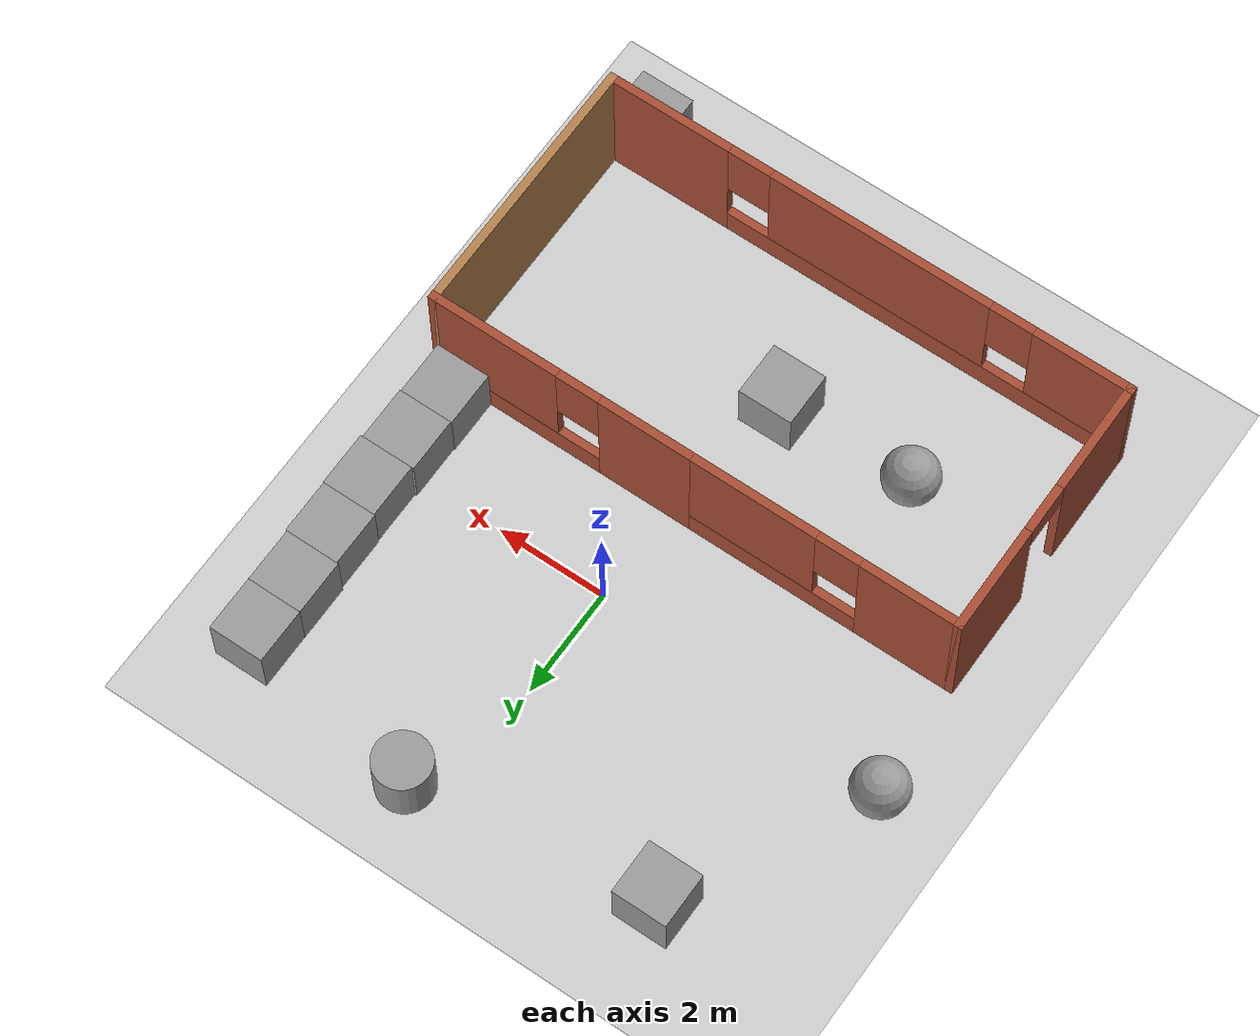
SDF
<sdf version="1.7">
 <world name="default">
  <light name="sun" type="directional">
   <pose>0 0 10 0 -0 0</pose>
   <diffuse>0.8 0.8 0.8 1</diffuse>
   <specular>0.2 0.2 0.2 1</specular>
   <attenuation>
    <range>1000</range>
    <constant>0.9</constant>
    <linear>0.01</linear>
    <quadratic>0.001</quadratic>
   </attenuation>
   <direction>-0.5 0.1 -0.9</direction>
   <spot><inner_angle>0</inner_angle><outer_angle>0</outer_angle><falloff>0</falloff></spot>
  </light>
  <model name="ground_plane">
   <static>1</static>
   <link name="link">
    <collision name="collision">
     <geometry><plane><normal>0 0 1</normal><size>100 100</size></plane></geometry>
     <surface>
      <contact><collide_bitmask>65535</collide_bitmask></contact>
      <friction><ode><mu>100</mu><mu2>50</mu2></ode></friction>
     </surface>
    </collision>
    <visual name="visual">
     <cast_shadows>0</cast_shadows>
     <geometry><plane><normal>0 0 1</normal><size>100 100</size></plane></geometry>
     <material>
      <script><uri>file://media/materials/scripts/gazebo.material</uri><name>Gazebo/Grey</name></script>
     </material>
    </visual>
   </link>
  </model>
  <gravity>0 0 -9.8</gravity>
  <magnetic_field>6e-06 2.3e-05 -4.2e-05</magnetic_field>
  <atmosphere type="adiabatic"/>
  <physics type="ode">
   <max_step_size>0.001</max_step_size>
   <real_time_factor>1</real_time_factor>
   <real_time_update_rate>1000</real_time_update_rate>
  </physics>
  <scene><ambient>0.4 0.4 0.4 1</ambient><background>0.7 0.7 0.7 1</background><shadows>1</shadows></scene>
  <spherical_coordinates>
   <surface_model>EARTH_WGS84</surface_model>
   <latitude_deg>0</latitude_deg>
   <longitude_deg>0</longitude_deg>
   <elevation>0</elevation>
   <heading_deg>0</heading_deg>
  </spherical_coordinates>
  <model name="frist_world">
   <pose>-0.445 -3.3625 0 0 -0 0</pose>
   <link name="Wall_0">
    <pose>2.5 1.5625 0 0 -0 0</pose>
    <visual name="Wall_0_Visual_0">
     <pose>-1.6313 0 1.25 0 -0 0</pose>
     <geometry><box><size>1.7374 0.15 2.5</size></box></geometry>
     <material>
      <script><uri>file://media/materials/scripts/gazebo.material</uri><name>Gazebo/Bricks</name></script>
      <ambient>1 1 1 1</ambient>
     </material>
     <meta><layer>0</layer></meta>
    </visual>
    <collision name="Wall_0_Collision_0">
     <geometry><box><size>1.7374 0.15 2.5</size></box></geometry>
     <pose>-1.6313 0 1.25 0 -0 0</pose>
    </collision>
    <visual name="Wall_0_Visual_1">
     <pose>0.868699 0 0.25 0 -0 0</pose>
     <geometry><box><size>3.2626 0.15 0.5</size></box></geometry>
     <material>
      <script><uri>file://media/materials/scripts/gazebo.material</uri><name>Gazebo/Bricks</name></script>
      <ambient>1 1 1 1</ambient>
     </material>
     <meta><layer>0</layer></meta>
    </visual>
    <collision name="Wall_0_Collision_1">
     <geometry><box><size>3.2626 0.15 0.5</size></box></geometry>
     <pose>0.868699 0 0.25 0 -0 0</pose>
    </collision>
    <visual name="Wall_0_Visual_2">
     <pose>1.2687 0 1.5 0 -0 0</pose>
     <geometry><box><size>2.4626 0.15 2</size></box></geometry>
     <material>
      <script><uri>file://media/materials/scripts/gazebo.material</uri><name>Gazebo/Bricks</name></script>
      <ambient>1 1 1 1</ambient>
     </material>
     <meta><layer>0</layer></meta>
    </visual>
    <collision name="Wall_0_Collision_2">
     <geometry><box><size>2.4626 0.15 2</size></box></geometry>
     <pose>1.2687 0 1.5 0 -0 0</pose>
    </collision>
    <visual name="Wall_0_Visual_3">
     <pose>-0.362601 0 1.9 0 -0 0</pose>
     <geometry><box><size>0.8 0.15 1.2</size></box></geometry>
     <material>
      <script><uri>file://media/materials/scripts/gazebo.material</uri><name>Gazebo/Bricks</name></script>
      <ambient>1 1 1 1</ambient>
     </material>
     <meta><layer>0</layer></meta>
    </visual>
    <collision name="Wall_0_Collision_3">
     <geometry><box><size>0.8 0.15 1.2</size></box></geometry>
     <pose>-0.362601 0 1.9 0 -0 0</pose>
    </collision>
   </link>
   <link name="Wall_3">
    <collision name="Wall_3_Collision">
     <geometry><box><size>5 0.15 2.5</size></box></geometry>
     <pose>0 0 1.25 0 -0 0</pose>
    </collision>
    <visual name="Wall_3_Visual">
     <pose>0 0 1.25 0 -0 0</pose>
     <geometry><box><size>5 0.15 2.5</size></box></geometry>
     <material>
      <script><uri>file://media/materials/scripts/gazebo.material</uri><name>Gazebo/Wood</name></script>
      <ambient>1 1 1 1</ambient>
     </material>
     <meta><layer>0</layer></meta>
    </visual>
    <pose>4.925 -0.8625 0 0 -0 -1.5708</pose>
   </link>
   <link name="Wall_4">
    <pose>-0 -3.2875 0 0 -0 3.14159</pose>
    <visual name="Wall_4_Visual_0">
     <pose>-3.80224 0 1.25 0 -0 0</pose>
     <geometry><box><size>2.39552 0.15 2.5</size></box></geometry>
     <material>
      <script><uri>file://media/materials/scripts/gazebo.material</uri><name>Gazebo/Bricks</name></script>
      <ambient>1 1 1 1</ambient>
     </material>
     <meta><layer>0</layer></meta>
    </visual>
    <collision name="Wall_4_Collision_0">
     <geometry><box><size>2.39552 0.15 2.5</size></box></geometry>
     <pose>-3.80224 0 1.25 0 -0 0</pose>
    </collision>
    <visual name="Wall_4_Visual_1">
     <pose>1.19776 0 0.25 0 -0 0</pose>
     <geometry><box><size>7.60448 0.15 0.5</size></box></geometry>
     <material>
      <script><uri>file://media/materials/scripts/gazebo.material</uri><name>Gazebo/Bricks</name></script>
      <ambient>1 1 1 1</ambient>
     </material>
     <meta><layer>0</layer></meta>
    </visual>
    <collision name="Wall_4_Collision_1">
     <geometry><box><size>7.60448 0.15 0.5</size></box></geometry>
     <pose>1.19776 0 0.25 0 -0 0</pose>
    </collision>
    <visual name="Wall_4_Visual_2">
     <pose>0.272918 0 1.5 0 -0 0</pose>
     <geometry><box><size>4.1548 0.15 2</size></box></geometry>
     <material>
      <script><uri>file://media/materials/scripts/gazebo.material</uri><name>Gazebo/Bricks</name></script>
      <ambient>1 1 1 1</ambient>
     </material>
     <meta><layer>0</layer></meta>
    </visual>
    <collision name="Wall_4_Collision_2">
     <geometry><box><size>4.1548 0.15 2</size></box></geometry>
     <pose>0.272918 0 1.5 0 -0 0</pose>
    </collision>
    <visual name="Wall_4_Visual_3">
     <pose>4.07516 0 1.5 0 -0 0</pose>
     <geometry><box><size>1.84968 0.15 2</size></box></geometry>
     <material>
      <script><uri>file://media/materials/scripts/gazebo.material</uri><name>Gazebo/Bricks</name></script>
      <ambient>1 1 1 1</ambient>
     </material>
     <meta><layer>0</layer></meta>
    </visual>
    <collision name="Wall_4_Collision_3">
     <geometry><box><size>1.84968 0.15 2</size></box></geometry>
     <pose>4.07516 0 1.5 0 -0 0</pose>
    </collision>
    <visual name="Wall_4_Visual_4">
     <pose>-2.20448 0 1.9 0 -0 0</pose>
     <geometry><box><size>0.8 0.15 1.2</size></box></geometry>
     <material>
      <script><uri>file://media/materials/scripts/gazebo.material</uri><name>Gazebo/Bricks</name></script>
      <ambient>1 1 1 1</ambient>
     </material>
     <meta><layer>0</layer></meta>
    </visual>
    <collision name="Wall_4_Collision_4">
     <geometry><box><size>0.8 0.15 1.2</size></box></geometry>
     <pose>-2.20448 0 1.9 0 -0 0</pose>
    </collision>
    <visual name="Wall_4_Visual_5">
     <pose>2.75032 0 1.9 0 -0 0</pose>
     <geometry><box><size>0.8 0.15 1.2</size></box></geometry>
     <material>
      <script><uri>file://media/materials/scripts/gazebo.material</uri><name>Gazebo/Bricks</name></script>
      <ambient>1 1 1 1</ambient>
     </material>
     <meta><layer>0</layer></meta>
    </visual>
    <collision name="Wall_4_Collision_5">
     <geometry><box><size>0.8 0.15 1.2</size></box></geometry>
     <pose>2.75032 0 1.9 0 -0 0</pose>
    </collision>
   </link>
   <link name="Wall_5">
    <pose>-4.925 -0.8625 0 0 -0 1.5708</pose>
    <visual name="Wall_5_Visual_0">
     <pose>-1.44013 0 1.25 0 -0 0</pose>
     <geometry><box><size>2.11974 0.15 2.5</size></box></geometry>
     <material>
      <script><uri>file://media/materials/scripts/gazebo.material</uri><name>Gazebo/Bricks</name></script>
      <ambient>1 1 1 1</ambient>
     </material>
     <meta><layer>0</layer></meta>
    </visual>
    <collision name="Wall_5_Collision_0">
     <geometry><box><size>2.11974 0.15 2.5</size></box></geometry>
     <pose>-1.44013 0 1.25 0 -0 0</pose>
    </collision>
    <visual name="Wall_5_Visual_1">
     <pose>1.50987 0 1.25 0 -0 0</pose>
     <geometry><box><size>1.98026 0.15 2.5</size></box></geometry>
     <material>
      <script><uri>file://media/materials/scripts/gazebo.material</uri><name>Gazebo/Bricks</name></script>
      <ambient>1 1 1 1</ambient>
     </material>
     <meta><layer>0</layer></meta>
    </visual>
    <collision name="Wall_5_Collision_1">
     <geometry><box><size>1.98026 0.15 2.5</size></box></geometry>
     <pose>1.50987 0 1.25 0 -0 0</pose>
    </collision>
    <visual name="Wall_5_Visual_2">
     <pose>0.069744 0 2.25 0 -0 0</pose>
     <geometry><box><size>0.9 0.15 0.5</size></box></geometry>
     <material>
      <script><uri>file://media/materials/scripts/gazebo.material</uri><name>Gazebo/Bricks</name></script>
      <ambient>1 1 1 1</ambient>
     </material>
     <meta><layer>0</layer></meta>
    </visual>
    <collision name="Wall_5_Collision_2">
     <geometry><box><size>0.9 0.15 0.5</size></box></geometry>
     <pose>0.069744 0 2.25 0 -0 0</pose>
    </collision>
   </link>
   <link name="Wall_6">
    <pose>-2.425 1.5625 0 0 -0 0</pose>
    <visual name="Wall_6_Visual_0">
     <pose>-1.64236 0 1.25 0 -0 0</pose>
     <geometry><box><size>1.86528 0.15 2.5</size></box></geometry>
     <material>
      <script><uri>file://media/materials/scripts/gazebo.material</uri><name>Gazebo/Bricks</name></script>
      <ambient>1 1 1 1</ambient>
     </material>
     <meta><layer>0</layer></meta>
    </visual>
    <collision name="Wall_6_Collision_0">
     <geometry><box><size>1.86528 0.15 2.5</size></box></geometry>
     <pose>-1.64236 0 1.25 0 -0 0</pose>
    </collision>
    <visual name="Wall_6_Visual_1">
     <pose>0.93264 0 0.25 0 -0 0</pose>
     <geometry><box><size>3.28472 0.15 0.5</size></box></geometry>
     <material>
      <script><uri>file://media/materials/scripts/gazebo.material</uri><name>Gazebo/Bricks</name></script>
      <ambient>1 1 1 1</ambient>
     </material>
     <meta><layer>0</layer></meta>
    </visual>
    <collision name="Wall_6_Collision_1">
     <geometry><box><size>3.28472 0.15 0.5</size></box></geometry>
     <pose>0.93264 0 0.25 0 -0 0</pose>
    </collision>
    <visual name="Wall_6_Visual_2">
     <pose>1.33264 0 1.5 0 -0 0</pose>
     <geometry><box><size>2.48472 0.15 2</size></box></geometry>
     <material>
      <script><uri>file://media/materials/scripts/gazebo.material</uri><name>Gazebo/Bricks</name></script>
      <ambient>1 1 1 1</ambient>
     </material>
     <meta><layer>0</layer></meta>
    </visual>
    <collision name="Wall_6_Collision_2">
     <geometry><box><size>2.48472 0.15 2</size></box></geometry>
     <pose>1.33264 0 1.5 0 -0 0</pose>
    </collision>
    <visual name="Wall_6_Visual_3">
     <pose>-0.30972 0 1.9 0 -0 0</pose>
     <geometry><box><size>0.8 0.15 1.2</size></box></geometry>
     <material>
      <script><uri>file://media/materials/scripts/gazebo.material</uri><name>Gazebo/Bricks</name></script>
      <ambient>1 1 1 1</ambient>
     </material>
     <meta><layer>0</layer></meta>
    </visual>
    <collision name="Wall_6_Collision_3">
     <geometry><box><size>0.8 0.15 1.2</size></box></geometry>
     <pose>-0.30972 0 1.9 0 -0 0</pose>
    </collision>
   </link>
   <static>1</static>
  </model>
  <model name="unit_sphere">
   <pose>-2.94493 -4.31177 0.5 0 -0 0</pose>
   <link name="link">
    <inertial>
     <mass>1</mass>
     <inertia><ixx>0.1</ixx><ixy>0</ixy><ixz>0</ixz><iyy>0.1</iyy><iyz>0</iyz><izz>0.1</izz></inertia>
    </inertial>
    <collision name="collision"><geometry><sphere><radius>0.5</radius></sphere></geometry></collision>
    <visual name="visual">
     <geometry><sphere><radius>0.5</radius></sphere></geometry>
     <material>
      <script><name>Gazebo/Grey</name><uri>file://media/materials/scripts/gazebo.material</uri></script>
     </material>
    </visual>
   </link>
  </model>
  <model name="unit_box">
   <pose>-0.478314 -4.28202 0.499995 -1e-05 -0 -0</pose>
   <link name="link">
    <inertial>
     <mass>1</mass>
     <inertia>
      <ixx>0.166667</ixx>
      <ixy>0</ixy>
      <ixz>0</ixz>
      <iyy>0.166667</iyy>
      <iyz>0</iyz>
      <izz>0.166667</izz>
     </inertia>
    </inertial>
    <collision name="collision"><geometry><box><size>1 1 1</size></box></geometry></collision>
    <visual name="visual">
     <geometry><box><size>1 1 1</size></box></geometry>
     <material>
      <script><name>Gazebo/Grey</name><uri>file://media/materials/scripts/gazebo.material</uri></script>
     </material>
    </visual>
   </link>
  </model>
  <model name="unit_cylinder">
   <pose>0.676073 4.36225 0.499998 3e-06 -3e-06 0</pose>
   <link name="link">
    <inertial>
     <mass>1</mass>
     <inertia><ixx>0.145833</ixx><ixy>0</ixy><ixz>0</ixz><iyy>0.145833</iyy><iyz>0</iyz><izz>0.125</izz></inertia>
    </inertial>
    <collision name="collision">
     <geometry><cylinder><radius>0.5</radius><length>1</length></cylinder></geometry>
    </collision>
    <visual name="visual">
     <geometry><cylinder><radius>0.5</radius><length>1</length></cylinder></geometry>
     <material>
      <script><name>Gazebo/Grey</name><uri>file://media/materials/scripts/gazebo.material</uri></script>
     </material>
    </visual>
   </link>
  </model>
  <model name="unit_box_0">
   <pose>-3.67024 3.7779 0.499995 -1e-05 -0 -0</pose>
   <link name="link">
    <inertial>
     <mass>1</mass>
     <inertia>
      <ixx>0.166667</ixx>
      <ixy>0</ixy>
      <ixz>0</ixz>
      <iyy>0.166667</iyy>
      <iyz>0</iyz>
      <izz>0.166667</izz>
     </inertia>
    </inertial>
    <collision name="collision"><geometry><box><size>1 1 1</size></box></geometry></collision>
    <visual name="visual">
     <geometry><box><size>1 1 1</size></box></geometry>
     <material>
      <script><name>Gazebo/Grey</name><uri>file://media/materials/scripts/gazebo.material</uri></script>
     </material>
    </visual>
   </link>
  </model>
  <model name="unit_sphere_0">
   <pose>-5.48428 0.391498 0.5 0 -0 0</pose>
   <link name="link">
    <inertial>
     <mass>1</mass>
     <inertia><ixx>0.1</ixx><ixy>0</ixy><ixz>0</ixz><iyy>0.1</iyy><iyz>0</iyz><izz>0.1</izz></inertia>
    </inertial>
    <collision name="collision"><geometry><sphere><radius>0.5</radius></sphere></geometry></collision>
    <visual name="visual">
     <geometry><sphere><radius>0.5</radius></sphere></geometry>
     <material>
      <script><name>Gazebo/Grey</name><uri>file://media/materials/scripts/gazebo.material</uri></script>
     </material>
    </visual>
   </link>
  </model>
  <model name="unit_box_1">
   <pose>3.94252 -1.22426 0.5 0 -0 0.00147</pose>
   <link name="link">
    <inertial>
     <mass>1</mass>
     <inertia>
      <ixx>0.166667</ixx>
      <ixy>0</ixy>
      <ixz>0</ixz>
      <iyy>0.166667</iyy>
      <iyz>0</iyz>
      <izz>0.166667</izz>
     </inertia>
    </inertial>
    <collision name="collision"><geometry><box><size>1 1 1</size></box></geometry></collision>
    <visual name="visual">
     <geometry><box><size>1 1 1</size></box></geometry>
     <material>
      <script><name>Gazebo/Grey</name><uri>file://media/materials/scripts/gazebo.material</uri></script>
     </material>
    </visual>
   </link>
  </model>
  <model name="unit_box_2">
   <pose>3.95726 -0.22423 0.499995 -1e-05 -0 0.00148</pose>
   <link name="link">
    <inertial>
     <mass>1</mass>
     <inertia>
      <ixx>0.166667</ixx>
      <ixy>0</ixy>
      <ixz>0</ixz>
      <iyy>0.166667</iyy>
      <iyz>0</iyz>
      <izz>0.166667</izz>
     </inertia>
    </inertial>
    <collision name="collision"><geometry><box><size>1 1 1</size></box></geometry></collision>
    <visual name="visual">
     <geometry><box><size>1 1 1</size></box></geometry>
     <material>
      <script><name>Gazebo/Grey</name><uri>file://media/materials/scripts/gazebo.material</uri></script>
     </material>
    </visual>
   </link>
  </model>
  <model name="unit_box_3">
   <pose>3.9921 0.775828 0.5 0 -0 0.001493</pose>
   <link name="link">
    <inertial>
     <mass>1</mass>
     <inertia>
      <ixx>0.166667</ixx>
      <ixy>0</ixy>
      <ixz>0</ixz>
      <iyy>0.166667</iyy>
      <iyz>0</iyz>
      <izz>0.166667</izz>
     </inertia>
    </inertial>
    <collision name="collision"><geometry><box><size>1 1 1</size></box></geometry></collision>
    <visual name="visual">
     <geometry><box><size>1 1 1</size></box></geometry>
     <material>
      <script><name>Gazebo/Grey</name><uri>file://media/materials/scripts/gazebo.material</uri></script>
     </material>
    </visual>
   </link>
  </model>
  <model name="unit_box_4">
   <pose>3.97569 1.77581 0.499995 0 1e-05 0.001507</pose>
   <link name="link">
    <inertial>
     <mass>1</mass>
     <inertia>
      <ixx>0.166667</ixx>
      <ixy>0</ixy>
      <ixz>0</ixz>
      <iyy>0.166667</iyy>
      <iyz>0</iyz>
      <izz>0.166667</izz>
     </inertia>
    </inertial>
    <collision name="collision"><geometry><box><size>1 1 1</size></box></geometry></collision>
    <visual name="visual">
     <geometry><box><size>1 1 1</size></box></geometry>
     <material>
      <script><name>Gazebo/Grey</name><uri>file://media/materials/scripts/gazebo.material</uri></script>
     </material>
    </visual>
   </link>
  </model>
  <model name="unit_box_5">
   <pose>3.94446 2.77577 0.5 0 -0 0.001508</pose>
   <link name="link">
    <inertial>
     <mass>1</mass>
     <inertia>
      <ixx>0.166667</ixx>
      <ixy>0</ixy>
      <ixz>0</ixz>
      <iyy>0.166667</iyy>
      <iyz>0</iyz>
      <izz>0.166667</izz>
     </inertia>
    </inertial>
    <collision name="collision"><geometry><box><size>1 1 1</size></box></geometry></collision>
    <visual name="visual">
     <geometry><box><size>1 1 1</size></box></geometry>
     <material>
      <script><name>Gazebo/Grey</name><uri>file://media/materials/scripts/gazebo.material</uri></script>
     </material>
    </visual>
   </link>
  </model>
  <model name="unit_box_6">
   <pose>3.94387 3.77577 0.5 0 -0 0.001508</pose>
   <link name="link">
    <inertial>
     <mass>1</mass>
     <inertia>
      <ixx>0.166667</ixx>
      <ixy>0</ixy>
      <ixz>0</ixz>
      <iyy>0.166667</iyy>
      <iyz>0</iyz>
      <izz>0.166667</izz>
     </inertia>
    </inertial>
    <collision name="collision"><geometry><box><size>1 1 1</size></box></geometry></collision>
    <visual name="visual">
     <geometry><box><size>1 1 1</size></box></geometry>
     <material>
      <script><name>Gazebo/Grey</name><uri>file://media/materials/scripts/gazebo.material</uri></script>
     </material>
    </visual>
   </link>
  </model>
  <model name="unit_box_7">
   <pose>4.16039 -7.26855 0.5 0 -0 0</pose>
   <link name="link">
    <inertial>
     <mass>1</mass>
     <inertia>
      <ixx>0.166667</ixx>
      <ixy>0</ixy>
      <ixz>0</ixz>
      <iyy>0.166667</iyy>
      <iyz>0</iyz>
      <izz>0.166667</izz>
     </inertia>
    </inertial>
    <collision name="collision"><geometry><box><size>1 1 1</size></box></geometry></collision>
    <visual name="visual">
     <geometry><box><size>1 1 1</size></box></geometry>
     <material>
      <script><name>Gazebo/Grey</name><uri>file://media/materials/scripts/gazebo.material</uri></script>
     </material>
    </visual>
   </link>
  </model>
 </world>
</sdf>
